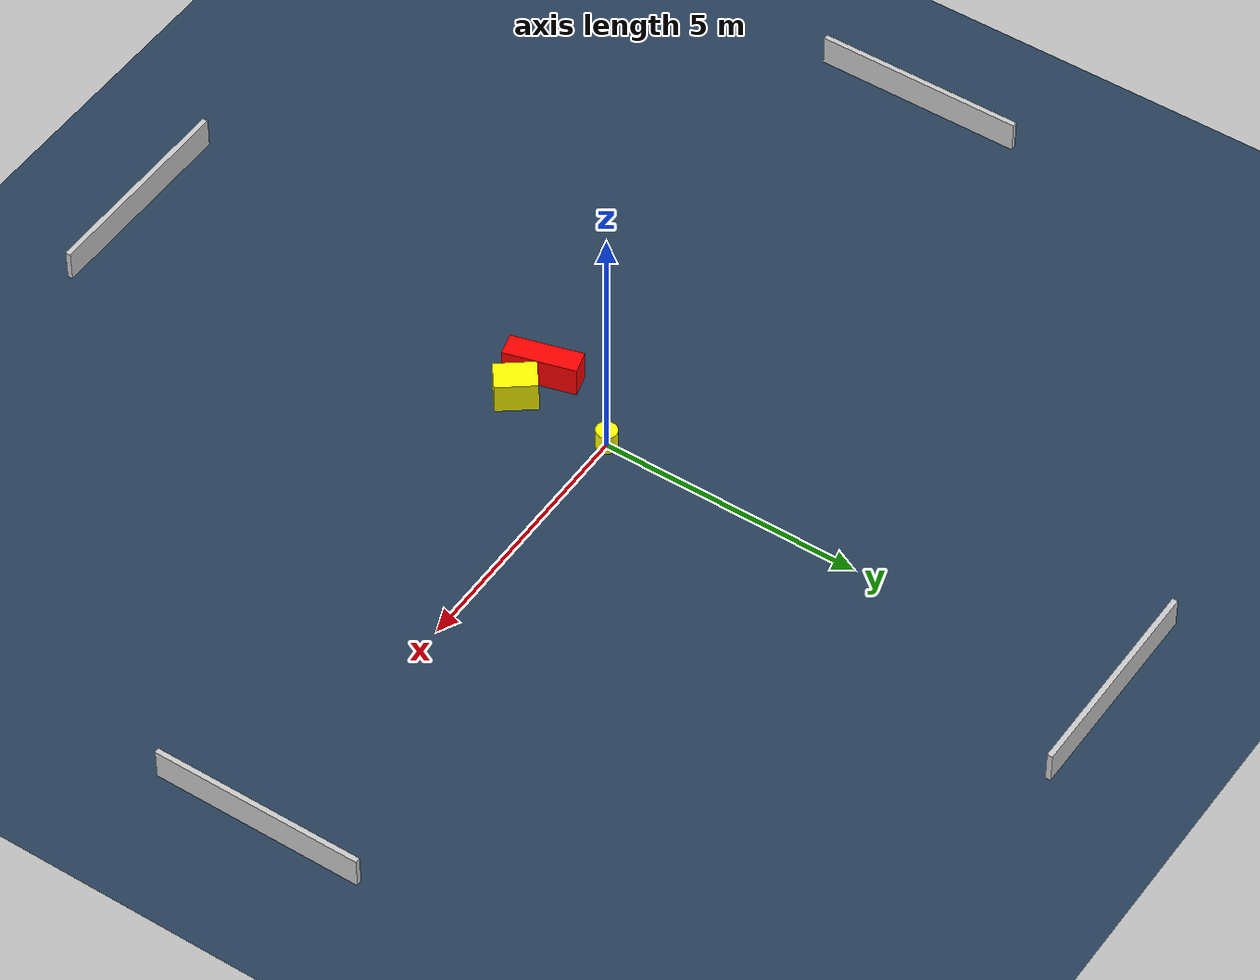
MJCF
<?xml version="1.0" ?>
<mujoco model="generated_environment">
  <option timestep="0.01" integrator="RK4" cone="elliptic"/>
  <default>
    <geom density="1"/>
  </default>
  <asset>
    <texture builtin="gradient" height="3072" name="skybox" rgb1="0.3 0.5 0.7" rgb2="0 0 0" type="skybox" width="512"/>
    <texture builtin="checker" height="300" name="groundplane" rgb1="0.2 0.3 0.4" rgb2="0.1 0.2 0.3" type="2d" width="300"/>
    <material name="groundplane" reflectance="0.2" texrepeat="5 5" texture="groundplane"/>
  </asset>
  <worldbody>
    <light dir="0 0 -1" directional="true" pos="0 0 1.5"/>
    <geom condim="3" friction="0.5 0.005 0.001" material="groundplane" name="floor" pos="0 0 0" size="0 0 0.05" type="plane"/>
    <body name="walls">
      <geom name="wall_1" condim="4" pos="-10.0 0.0 0.3" rgba="0.800000011920929 0.800000011920929 0.800000011920929 1.0" size="0.05 2.0 0.3" type="box"/>
      <geom name="wall_2" condim="4" pos="10.0 0.0 0.3" rgba="0.800000011920929 0.800000011920929 0.800000011920929 1.0" size="0.05 2.0 0.3" type="box"/>
      <geom name="wall_3" condim="4" pos="0.0 -10.0 0.3" rgba="0.800000011920929 0.800000011920929 0.800000011920929 1.0" size="2.0 0.05 0.3" type="box"/>
      <geom name="wall_4" condim="4" pos="0.0 10.0 0.3" rgba="0.800000011920929 0.800000011920929 0.800000011920929 1.0" size="2.0 0.05 0.3" type="box"/>
    </body>
    <body name="robot">
      <joint name="joint_x" type="slide" pos="0 0 0" axis="1 0 0"/>
      <joint name="joint_y" type="slide" pos="0 0 0" axis="0 1 0"/>
      <geom name="robot" type="cylinder" pos="0.0 0.0 0.2" size="0.2 0.2 0.0" mass="5.0" friction="1.0 0.005 0.0001" condim="4" rgba="1.0 1.0 0.0 1.0"/>
    </body>
    <body name="obstacle_1_movable">
      <geom name="obstacle_1_movable" condim="4" pos="-0.0298056364972701 -1.9086051576908678 0.3" euler="0 0 217.81238404515207" friction="0.0 0.005 0.001" rgba="1.0 1.0 0.0 1.0" size="0.2832699202961595 0.3867375905920591 0.3" type="box" mass="0.1"/>
      <joint type="free"/>
    </body>
    <body name="obstacle_2_static">
      <geom name="obstacle_2_static" condim="4" pos="-0.71047224800676 -1.8005333089219535 0.3" euler="0 0 105.55912841847427" friction="0.0 0.005 0.001" rgba="1.0 0.0 0.0 1.0" size="0.681896479678523 0.2180963029468328 0.3" type="box"/>
    </body>
  </worldbody>
  <actuator>
    <motor name="actuator_x" joint="joint_x" gear="1" ctrlrange="-1 1"/>
    <motor name="actuator_y" joint="joint_y" gear="1" ctrlrange="-1 1"/>
  </actuator>
</mujoco>
